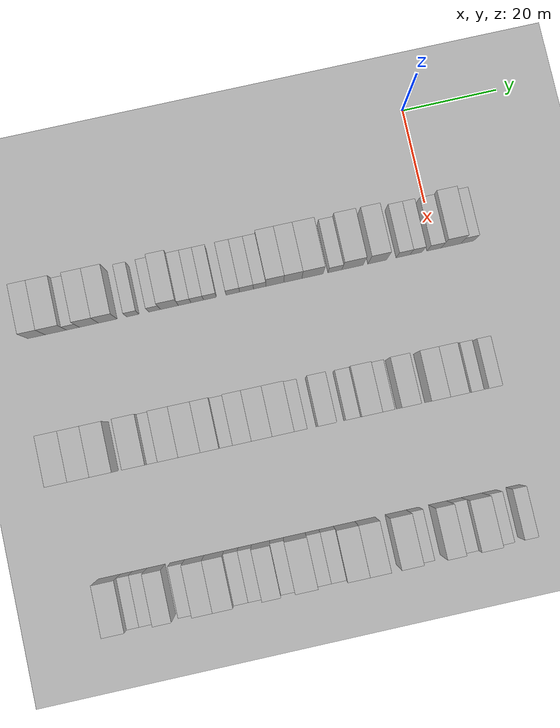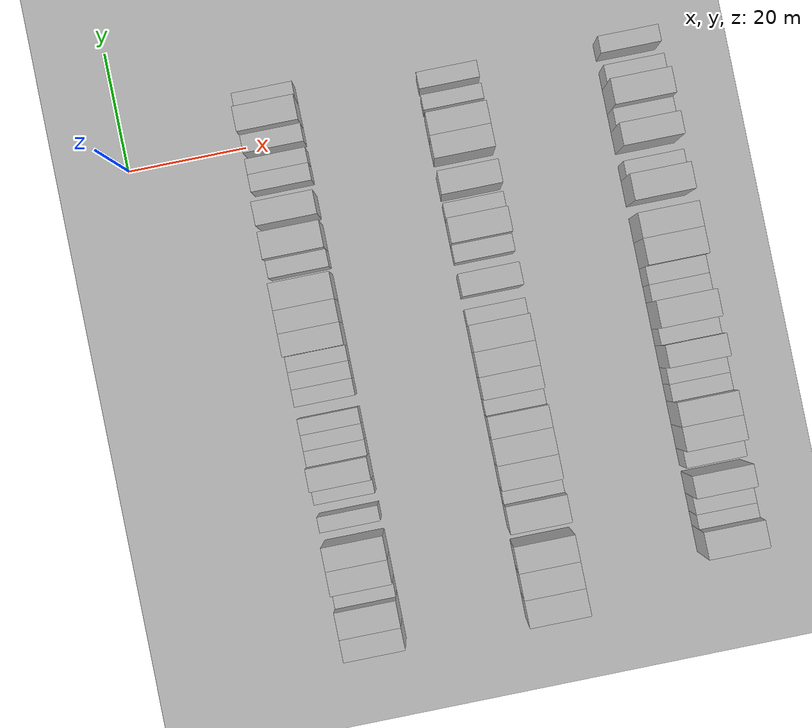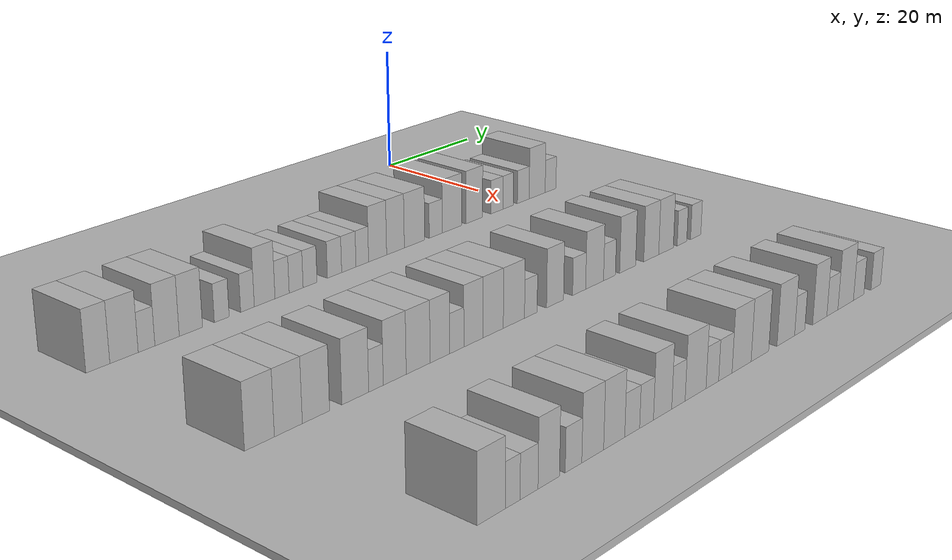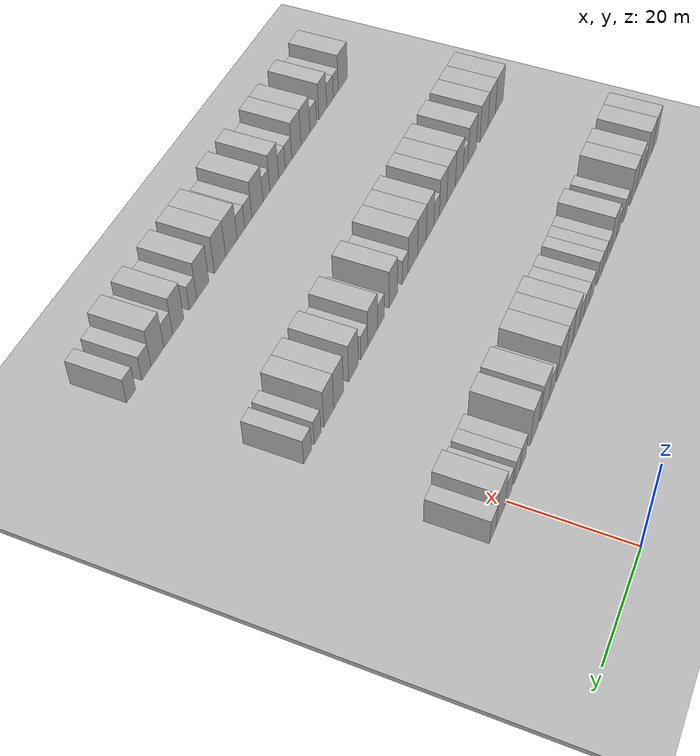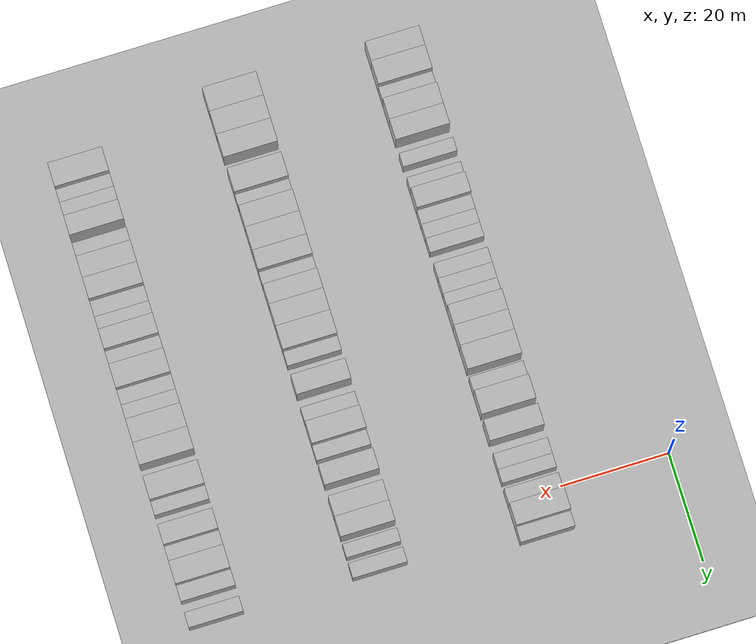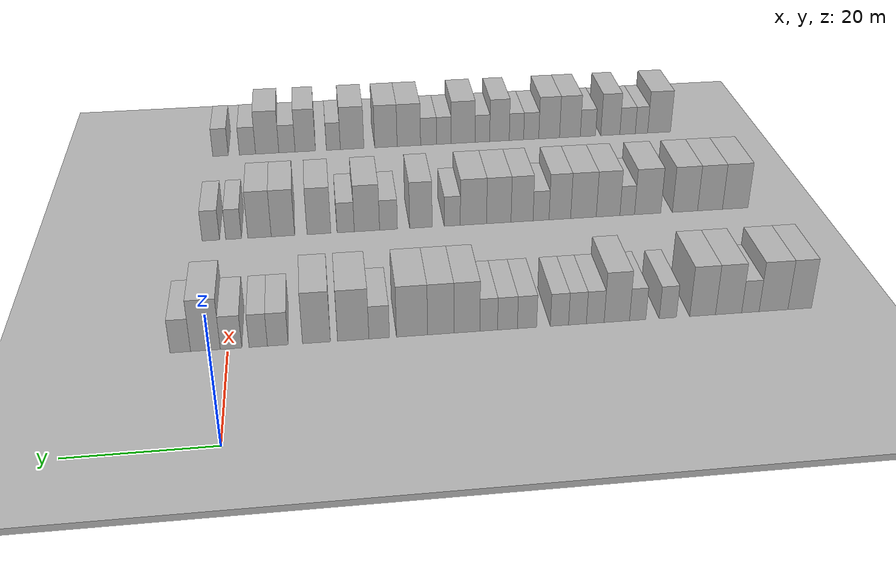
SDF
<sdf version="1.6">
 <world name="default">
  <include><name>ground_plane_1</name><uri>model://HANNAS_ground_plane</uri></include>
  <include>
   <name>ground_plane_2</name>
   <uri>model://HANNAS_ground_plane</uri>
   <pose>100 0 0  0 0 0</pose>
  </include>
  <model name="building_45">
   <static>1</static>
   <pose>25.0000 -83.1467 0 0.000000 0.000000 0.000000</pose>
   <link name="link">
    <pose>0 0 4.50 0 0 0</pose>
    <collision name="collision"><geometry><box><size>10.0000 3.6132 9.0000</size></box></geometry></collision>
    <visual name="visual">
     <cast_shadows>0</cast_shadows>
     <geometry><box><size>10.0000 3.6132 9.0000</size></box></geometry>
     <material>
      <script>
       <uri>model://HANNAS_wall/materials/scripts</uri>
       <uri>model://HANNAS_wall/materials/textures</uri>
       <name>vrc/HANNAS_wall</name>
      </script>
     </material>
    </visual>
   </link>
  </model>
  <model name="building_46">
   <static>1</static>
   <pose>25.0000 -79.1482 0 0.000000 0.000000 0.000000</pose>
   <link name="link">
    <pose>0 0 4.50 0 0 0</pose>
    <collision name="collision"><geometry><box><size>10.0000 4.3839 9.0000</size></box></geometry></collision>
    <visual name="visual">
     <cast_shadows>0</cast_shadows>
     <geometry><box><size>10.0000 4.3839 9.0000</size></box></geometry>
     <material>
      <script>
       <uri>model://HANNAS_wall/materials/scripts</uri>
       <uri>model://HANNAS_wall/materials/textures</uri>
       <name>vrc/HANNAS_wall</name>
      </script>
     </material>
    </visual>
   </link>
  </model>
  <model name="building_47">
   <static>1</static>
   <pose>25.0000 -75.6346 0 0.000000 0.000000 0.000000</pose>
   <link name="link">
    <pose>0 0 3.00 0 0 0</pose>
    <collision name="collision"><geometry><box><size>10.0000 2.6431 6.0000</size></box></geometry></collision>
    <visual name="visual">
     <cast_shadows>0</cast_shadows>
     <geometry><box><size>10.0000 2.6431 6.0000</size></box></geometry>
     <material>
      <script>
       <uri>model://HANNAS_wall/materials/scripts</uri>
       <uri>model://HANNAS_wall/materials/textures</uri>
       <name>vrc/HANNAS_wall</name>
      </script>
     </material>
    </visual>
   </link>
  </model>
  <model name="building_48">
   <static>1</static>
   <pose>25.0000 -72.3406 0 0.000000 0.000000 0.000000</pose>
   <link name="link">
    <pose>0 0 4.50 0 0 0</pose>
    <collision name="collision"><geometry><box><size>10.0000 3.9449 9.0000</size></box></geometry></collision>
    <visual name="visual">
     <cast_shadows>0</cast_shadows>
     <geometry><box><size>10.0000 3.9449 9.0000</size></box></geometry>
     <material>
      <script>
       <uri>model://HANNAS_wall/materials/scripts</uri>
       <uri>model://HANNAS_wall/materials/textures</uri>
       <name>vrc/HANNAS_wall</name>
      </script>
     </material>
    </visual>
   </link>
  </model>
  <model name="building_49">
   <static>1</static>
   <pose>25.0000 -68.4326 0 0.000000 0.000000 0.000000</pose>
   <link name="link">
    <pose>0 0 4.50 0 0 0</pose>
    <collision name="collision"><geometry><box><size>10.0000 3.8712 9.0000</size></box></geometry></collision>
    <visual name="visual">
     <cast_shadows>0</cast_shadows>
     <geometry><box><size>10.0000 3.8712 9.0000</size></box></geometry>
     <material>
      <script>
       <uri>model://HANNAS_wall/materials/scripts</uri>
       <uri>model://HANNAS_wall/materials/textures</uri>
       <name>vrc/HANNAS_wall</name>
      </script>
     </material>
    </visual>
   </link>
  </model>
  <model name="building_50">
   <static>1</static>
   <pose>25.0000 -63.2188 0 0.000000 0.000000 0.000000</pose>
   <link name="link">
    <pose>0 0 3.00 0 0 0</pose>
    <collision name="collision"><geometry><box><size>10.0000 2.5565 6.0000</size></box></geometry></collision>
    <visual name="visual">
     <cast_shadows>0</cast_shadows>
     <geometry><box><size>10.0000 2.5565 6.0000</size></box></geometry>
     <material>
      <script>
       <uri>model://HANNAS_wall/materials/scripts</uri>
       <uri>model://HANNAS_wall/materials/textures</uri>
       <name>vrc/HANNAS_wall</name>
      </script>
     </material>
    </visual>
   </link>
  </model>
  <model name="building_51">
   <static>1</static>
   <pose>25.0000 -58.7260 0 0.000000 0.000000 0.000000</pose>
   <link name="link">
    <pose>0 0 3.00 0 0 0</pose>
    <collision name="collision"><geometry><box><size>10.0000 2.4291 6.0000</size></box></geometry></collision>
    <visual name="visual">
     <cast_shadows>0</cast_shadows>
     <geometry><box><size>10.0000 2.4291 6.0000</size></box></geometry>
     <material>
      <script>
       <uri>model://HANNAS_wall/materials/scripts</uri>
       <uri>model://HANNAS_wall/materials/textures</uri>
       <name>vrc/HANNAS_wall</name>
      </script>
     </material>
    </visual>
   </link>
  </model>
  <model name="building_52">
   <static>1</static>
   <pose>25.0000 -55.6364 0 0.000000 0.000000 0.000000</pose>
   <link name="link">
    <pose>0 0 4.50 0 0 0</pose>
    <collision name="collision"><geometry><box><size>10.0000 3.7501 9.0000</size></box></geometry></collision>
    <visual name="visual">
     <cast_shadows>0</cast_shadows>
     <geometry><box><size>10.0000 3.7501 9.0000</size></box></geometry>
     <material>
      <script>
       <uri>model://HANNAS_wall/materials/scripts</uri>
       <uri>model://HANNAS_wall/materials/textures</uri>
       <name>vrc/HANNAS_wall</name>
      </script>
     </material>
    </visual>
   </link>
  </model>
  <model name="building_53">
   <static>1</static>
   <pose>25.0000 -52.4524 0 0.000000 0.000000 0.000000</pose>
   <link name="link">
    <pose>0 0 3.00 0 0 0</pose>
    <collision name="collision"><geometry><box><size>10.0000 2.6179 6.0000</size></box></geometry></collision>
    <visual name="visual">
     <cast_shadows>0</cast_shadows>
     <geometry><box><size>10.0000 2.6179 6.0000</size></box></geometry>
     <material>
      <script>
       <uri>model://HANNAS_wall/materials/scripts</uri>
       <uri>model://HANNAS_wall/materials/textures</uri>
       <name>vrc/HANNAS_wall</name>
      </script>
     </material>
    </visual>
   </link>
  </model>
  <model name="building_54">
   <static>1</static>
   <pose>25.0000 -49.8335 0 0.000000 0.000000 0.000000</pose>
   <link name="link">
    <pose>0 0 3.00 0 0 0</pose>
    <collision name="collision"><geometry><box><size>10.0000 2.6200 6.0000</size></box></geometry></collision>
    <visual name="visual">
     <cast_shadows>0</cast_shadows>
     <geometry><box><size>10.0000 2.6200 6.0000</size></box></geometry>
     <material>
      <script>
       <uri>model://HANNAS_wall/materials/scripts</uri>
       <uri>model://HANNAS_wall/materials/textures</uri>
       <name>vrc/HANNAS_wall</name>
      </script>
     </material>
    </visual>
   </link>
  </model>
  <model name="building_55">
   <static>1</static>
   <pose>25.0000 -47.1910 0 0.000000 0.000000 0.000000</pose>
   <link name="link">
    <pose>0 0 3.00 0 0 0</pose>
    <collision name="collision"><geometry><box><size>10.0000 2.6651 6.0000</size></box></geometry></collision>
    <visual name="visual">
     <cast_shadows>0</cast_shadows>
     <geometry><box><size>10.0000 2.6651 6.0000</size></box></geometry>
     <material>
      <script>
       <uri>model://HANNAS_wall/materials/scripts</uri>
       <uri>model://HANNAS_wall/materials/textures</uri>
       <name>vrc/HANNAS_wall</name>
      </script>
     </material>
    </visual>
   </link>
  </model>
  <model name="building_56">
   <static>1</static>
   <pose>25.0000 -42.4546 0 0.000000 0.000000 0.000000</pose>
   <link name="link">
    <pose>0 0 3.00 0 0 0</pose>
    <collision name="collision"><geometry><box><size>10.0000 2.8075 6.0000</size></box></geometry></collision>
    <visual name="visual">
     <cast_shadows>0</cast_shadows>
     <geometry><box><size>10.0000 2.8075 6.0000</size></box></geometry>
     <material>
      <script>
       <uri>model://HANNAS_wall/materials/scripts</uri>
       <uri>model://HANNAS_wall/materials/textures</uri>
       <name>vrc/HANNAS_wall</name>
      </script>
     </material>
    </visual>
   </link>
  </model>
  <model name="building_57">
   <static>1</static>
   <pose>25.0000 -39.6126 0 0.000000 0.000000 0.000000</pose>
   <link name="link">
    <pose>0 0 3.00 0 0 0</pose>
    <collision name="collision"><geometry><box><size>10.0000 2.8767 6.0000</size></box></geometry></collision>
    <visual name="visual">
     <cast_shadows>0</cast_shadows>
     <geometry><box><size>10.0000 2.8767 6.0000</size></box></geometry>
     <material>
      <script>
       <uri>model://HANNAS_wall/materials/scripts</uri>
       <uri>model://HANNAS_wall/materials/textures</uri>
       <name>vrc/HANNAS_wall</name>
      </script>
     </material>
    </visual>
   </link>
  </model>
  <model name="building_58">
   <static>1</static>
   <pose>25.0000 -36.8945 0 0.000000 0.000000 0.000000</pose>
   <link name="link">
    <pose>0 0 3.00 0 0 0</pose>
    <collision name="collision"><geometry><box><size>10.0000 2.5595 6.0000</size></box></geometry></collision>
    <visual name="visual">
     <cast_shadows>0</cast_shadows>
     <geometry><box><size>10.0000 2.5595 6.0000</size></box></geometry>
     <material>
      <script>
       <uri>model://HANNAS_wall/materials/scripts</uri>
       <uri>model://HANNAS_wall/materials/textures</uri>
       <name>vrc/HANNAS_wall</name>
      </script>
     </material>
    </visual>
   </link>
  </model>
  <model name="building_59">
   <static>1</static>
   <pose>25.0000 -33.7421 0 0.000000 0.000000 0.000000</pose>
   <link name="link">
    <pose>0 0 4.50 0 0 0</pose>
    <collision name="collision"><geometry><box><size>10.0000 3.7453 9.0000</size></box></geometry></collision>
    <visual name="visual">
     <cast_shadows>0</cast_shadows>
     <geometry><box><size>10.0000 3.7453 9.0000</size></box></geometry>
     <material>
      <script>
       <uri>model://HANNAS_wall/materials/scripts</uri>
       <uri>model://HANNAS_wall/materials/textures</uri>
       <name>vrc/HANNAS_wall</name>
      </script>
     </material>
    </visual>
   </link>
  </model>
  <model name="building_60">
   <static>1</static>
   <pose>25.0000 -29.9868 0 0.000000 0.000000 0.000000</pose>
   <link name="link">
    <pose>0 0 4.50 0 0 0</pose>
    <collision name="collision"><geometry><box><size>10.0000 3.7653 9.0000</size></box></geometry></collision>
    <visual name="visual">
     <cast_shadows>0</cast_shadows>
     <geometry><box><size>10.0000 3.7653 9.0000</size></box></geometry>
     <material>
      <script>
       <uri>model://HANNAS_wall/materials/scripts</uri>
       <uri>model://HANNAS_wall/materials/textures</uri>
       <name>vrc/HANNAS_wall</name>
      </script>
     </material>
    </visual>
   </link>
  </model>
  <model name="building_61">
   <static>1</static>
   <pose>25.0000 -25.8862 0 0.000000 0.000000 0.000000</pose>
   <link name="link">
    <pose>0 0 4.50 0 0 0</pose>
    <collision name="collision"><geometry><box><size>10.0000 4.4359 9.0000</size></box></geometry></collision>
    <visual name="visual">
     <cast_shadows>0</cast_shadows>
     <geometry><box><size>10.0000 4.4359 9.0000</size></box></geometry>
     <material>
      <script>
       <uri>model://HANNAS_wall/materials/scripts</uri>
       <uri>model://HANNAS_wall/materials/textures</uri>
       <name>vrc/HANNAS_wall</name>
      </script>
     </material>
    </visual>
   </link>
  </model>
  <model name="building_62">
   <static>1</static>
   <pose>25.0000 -21.2122 0 0.000000 0.000000 0.000000</pose>
   <link name="link">
    <pose>0 0 3.00 0 0 0</pose>
    <collision name="collision"><geometry><box><size>10.0000 2.9122 6.0000</size></box></geometry></collision>
    <visual name="visual">
     <cast_shadows>0</cast_shadows>
     <geometry><box><size>10.0000 2.9122 6.0000</size></box></geometry>
     <material>
      <script>
       <uri>model://HANNAS_wall/materials/scripts</uri>
       <uri>model://HANNAS_wall/materials/textures</uri>
       <name>vrc/HANNAS_wall</name>
      </script>
     </material>
    </visual>
   </link>
  </model>
  <model name="building_63">
   <static>1</static>
   <pose>25.0000 -17.5388 0 0.000000 0.000000 0.000000</pose>
   <link name="link">
    <pose>0 0 4.50 0 0 0</pose>
    <collision name="collision"><geometry><box><size>10.0000 4.4345 9.0000</size></box></geometry></collision>
    <visual name="visual">
     <cast_shadows>0</cast_shadows>
     <geometry><box><size>10.0000 4.4345 9.0000</size></box></geometry>
     <material>
      <script>
       <uri>model://HANNAS_wall/materials/scripts</uri>
       <uri>model://HANNAS_wall/materials/textures</uri>
       <name>vrc/HANNAS_wall</name>
      </script>
     </material>
    </visual>
   </link>
  </model>
  <model name="building_64">
   <static>1</static>
   <pose>25.0000 -12.3627 0 0.000000 0.000000 0.000000</pose>
   <link name="link">
    <pose>0 0 4.50 0 0 0</pose>
    <collision name="collision"><geometry><box><size>10.0000 3.9179 9.0000</size></box></geometry></collision>
    <visual name="visual">
     <cast_shadows>0</cast_shadows>
     <geometry><box><size>10.0000 3.9179 9.0000</size></box></geometry>
     <material>
      <script>
       <uri>model://HANNAS_wall/materials/scripts</uri>
       <uri>model://HANNAS_wall/materials/textures</uri>
       <name>vrc/HANNAS_wall</name>
      </script>
     </material>
    </visual>
   </link>
  </model>
  <model name="building_65">
   <static>1</static>
   <pose>25.0000 -6.9539 0 0.000000 0.000000 0.000000</pose>
   <link name="link">
    <pose>0 0 3.00 0 0 0</pose>
    <collision name="collision"><geometry><box><size>10.0000 2.8996 6.0000</size></box></geometry></collision>
    <visual name="visual">
     <cast_shadows>0</cast_shadows>
     <geometry><box><size>10.0000 2.8996 6.0000</size></box></geometry>
     <material>
      <script>
       <uri>model://HANNAS_wall/materials/scripts</uri>
       <uri>model://HANNAS_wall/materials/textures</uri>
       <name>vrc/HANNAS_wall</name>
      </script>
     </material>
    </visual>
   </link>
  </model>
  <model name="building_66">
   <static>1</static>
   <pose>25.0000 -4.2256 0 0.000000 0.000000 0.000000</pose>
   <link name="link">
    <pose>0 0 3.00 0 0 0</pose>
    <collision name="collision"><geometry><box><size>10.0000 2.5570 6.0000</size></box></geometry></collision>
    <visual name="visual">
     <cast_shadows>0</cast_shadows>
     <geometry><box><size>10.0000 2.5570 6.0000</size></box></geometry>
     <material>
      <script>
       <uri>model://HANNAS_wall/materials/scripts</uri>
       <uri>model://HANNAS_wall/materials/textures</uri>
       <name>vrc/HANNAS_wall</name>
      </script>
     </material>
    </visual>
   </link>
  </model>
  <model name="building_67">
   <static>1</static>
   <pose>25.0000 -0.4562 0 0.000000 0.000000 0.000000</pose>
   <link name="link">
    <pose>0 0 3.00 0 0 0</pose>
    <collision name="collision"><geometry><box><size>10.0000 2.9819 6.0000</size></box></geometry></collision>
    <visual name="visual">
     <cast_shadows>0</cast_shadows>
     <geometry><box><size>10.0000 2.9819 6.0000</size></box></geometry>
     <material>
      <script>
       <uri>model://HANNAS_wall/materials/scripts</uri>
       <uri>model://HANNAS_wall/materials/textures</uri>
       <name>vrc/HANNAS_wall</name>
      </script>
     </material>
    </visual>
   </link>
  </model>
  <model name="building_68">
   <static>1</static>
   <pose>25.0000 3.0815 0 0.000000 0.000000 0.000000</pose>
   <link name="link">
    <pose>0 0 4.50 0 0 0</pose>
    <collision name="collision"><geometry><box><size>10.0000 4.0934 9.0000</size></box></geometry></collision>
    <visual name="visual">
     <cast_shadows>0</cast_shadows>
     <geometry><box><size>10.0000 4.0934 9.0000</size></box></geometry>
     <material>
      <script>
       <uri>model://HANNAS_wall/materials/scripts</uri>
       <uri>model://HANNAS_wall/materials/textures</uri>
       <name>vrc/HANNAS_wall</name>
      </script>
     </material>
    </visual>
   </link>
  </model>
  <model name="building_69">
   <static>1</static>
   <pose>25.0000 6.5411 0 0.000000 0.000000 0.000000</pose>
   <link name="link">
    <pose>0 0 3.00 0 0 0</pose>
    <collision name="collision"><geometry><box><size>10.0000 2.8258 6.0000</size></box></geometry></collision>
    <visual name="visual">
     <cast_shadows>0</cast_shadows>
     <geometry><box><size>10.0000 2.8258 6.0000</size></box></geometry>
     <material>
      <script>
       <uri>model://HANNAS_wall/materials/scripts</uri>
       <uri>model://HANNAS_wall/materials/textures</uri>
       <name>vrc/HANNAS_wall</name>
      </script>
     </material>
    </visual>
   </link>
  </model>
  <model name="building_189">
   <static>1</static>
   <pose>55.0000 -83.3274 0 0.000000 0.000000 0.000000</pose>
   <link name="link">
    <pose>0 0 4.50 0 0 0</pose>
    <collision name="collision"><geometry><box><size>10.0000 4.4622 9.0000</size></box></geometry></collision>
    <visual name="visual">
     <cast_shadows>0</cast_shadows>
     <geometry><box><size>10.0000 4.4622 9.0000</size></box></geometry>
     <material>
      <script>
       <uri>model://HANNAS_wall/materials/scripts</uri>
       <uri>model://HANNAS_wall/materials/textures</uri>
       <name>vrc/HANNAS_wall</name>
      </script>
     </material>
    </visual>
   </link>
  </model>
  <model name="building_190">
   <static>1</static>
   <pose>55.0000 -78.9363 0 0.000000 0.000000 0.000000</pose>
   <link name="link">
    <pose>0 0 4.50 0 0 0</pose>
    <collision name="collision"><geometry><box><size>10.0000 4.3200 9.0000</size></box></geometry></collision>
    <visual name="visual">
     <cast_shadows>0</cast_shadows>
     <geometry><box><size>10.0000 4.3200 9.0000</size></box></geometry>
     <material>
      <script>
       <uri>model://HANNAS_wall/materials/scripts</uri>
       <uri>model://HANNAS_wall/materials/textures</uri>
       <name>vrc/HANNAS_wall</name>
      </script>
     </material>
    </visual>
   </link>
  </model>
  <model name="building_191">
   <static>1</static>
   <pose>55.0000 -74.6039 0 0.000000 0.000000 0.000000</pose>
   <link name="link">
    <pose>0 0 4.50 0 0 0</pose>
    <collision name="collision"><geometry><box><size>10.0000 4.3448 9.0000</size></box></geometry></collision>
    <visual name="visual">
     <cast_shadows>0</cast_shadows>
     <geometry><box><size>10.0000 4.3448 9.0000</size></box></geometry>
     <material>
      <script>
       <uri>model://HANNAS_wall/materials/scripts</uri>
       <uri>model://HANNAS_wall/materials/textures</uri>
       <name>vrc/HANNAS_wall</name>
      </script>
     </material>
    </visual>
   </link>
  </model>
  <model name="building_192">
   <static>1</static>
   <pose>55.0000 -68.1826 0 0.000000 0.000000 0.000000</pose>
   <link name="link">
    <pose>0 0 4.50 0 0 0</pose>
    <collision name="collision"><geometry><box><size>10.0000 4.4977 9.0000</size></box></geometry></collision>
    <visual name="visual">
     <cast_shadows>0</cast_shadows>
     <geometry><box><size>10.0000 4.4977 9.0000</size></box></geometry>
     <material>
      <script>
       <uri>model://HANNAS_wall/materials/scripts</uri>
       <uri>model://HANNAS_wall/materials/textures</uri>
       <name>vrc/HANNAS_wall</name>
      </script>
     </material>
    </visual>
   </link>
  </model>
  <model name="building_193">
   <static>1</static>
   <pose>55.0000 -64.6857 0 0.000000 0.000000 0.000000</pose>
   <link name="link">
    <pose>0 0 3.00 0 0 0</pose>
    <collision name="collision"><geometry><box><size>10.0000 2.4961 6.0000</size></box></geometry></collision>
    <visual name="visual">
     <cast_shadows>0</cast_shadows>
     <geometry><box><size>10.0000 2.4961 6.0000</size></box></geometry>
     <material>
      <script>
       <uri>model://HANNAS_wall/materials/scripts</uri>
       <uri>model://HANNAS_wall/materials/textures</uri>
       <name>vrc/HANNAS_wall</name>
      </script>
     </material>
    </visual>
   </link>
  </model>
  <model name="building_194">
   <static>1</static>
   <pose>55.0000 -61.4214 0 0.000000 0.000000 0.000000</pose>
   <link name="link">
    <pose>0 0 4.50 0 0 0</pose>
    <collision name="collision"><geometry><box><size>10.0000 4.0326 9.0000</size></box></geometry></collision>
    <visual name="visual">
     <cast_shadows>0</cast_shadows>
     <geometry><box><size>10.0000 4.0326 9.0000</size></box></geometry>
     <material>
      <script>
       <uri>model://HANNAS_wall/materials/scripts</uri>
       <uri>model://HANNAS_wall/materials/textures</uri>
       <name>vrc/HANNAS_wall</name>
      </script>
     </material>
    </visual>
   </link>
  </model>
  <model name="building_195">
   <static>1</static>
   <pose>55.0000 -57.2342 0 0.000000 0.000000 0.000000</pose>
   <link name="link">
    <pose>0 0 4.50 0 0 0</pose>
    <collision name="collision"><geometry><box><size>10.0000 4.3418 9.0000</size></box></geometry></collision>
    <visual name="visual">
     <cast_shadows>0</cast_shadows>
     <geometry><box><size>10.0000 4.3418 9.0000</size></box></geometry>
     <material>
      <script>
       <uri>model://HANNAS_wall/materials/scripts</uri>
       <uri>model://HANNAS_wall/materials/textures</uri>
       <name>vrc/HANNAS_wall</name>
      </script>
     </material>
    </visual>
   </link>
  </model>
  <model name="building_196">
   <static>1</static>
   <pose>55.0000 -53.2390 0 0.000000 0.000000 0.000000</pose>
   <link name="link">
    <pose>0 0 4.50 0 0 0</pose>
    <collision name="collision"><geometry><box><size>10.0000 3.6485 9.0000</size></box></geometry></collision>
    <visual name="visual">
     <cast_shadows>0</cast_shadows>
     <geometry><box><size>10.0000 3.6485 9.0000</size></box></geometry>
     <material>
      <script>
       <uri>model://HANNAS_wall/materials/scripts</uri>
       <uri>model://HANNAS_wall/materials/textures</uri>
       <name>vrc/HANNAS_wall</name>
      </script>
     </material>
    </visual>
   </link>
  </model>
  <model name="building_197">
   <static>1</static>
   <pose>55.0000 -50.0666 0 0.000000 0.000000 0.000000</pose>
   <link name="link">
    <pose>0 0 3.00 0 0 0</pose>
    <collision name="collision"><geometry><box><size>10.0000 2.6963 6.0000</size></box></geometry></collision>
    <visual name="visual">
     <cast_shadows>0</cast_shadows>
     <geometry><box><size>10.0000 2.6963 6.0000</size></box></geometry>
     <material>
      <script>
       <uri>model://HANNAS_wall/materials/scripts</uri>
       <uri>model://HANNAS_wall/materials/textures</uri>
       <name>vrc/HANNAS_wall</name>
      </script>
     </material>
    </visual>
   </link>
  </model>
  <model name="building_198">
   <static>1</static>
   <pose>55.0000 -46.8722 0 0.000000 0.000000 0.000000</pose>
   <link name="link">
    <pose>0 0 4.50 0 0 0</pose>
    <collision name="collision"><geometry><box><size>10.0000 3.6926 9.0000</size></box></geometry></collision>
    <visual name="visual">
     <cast_shadows>0</cast_shadows>
     <geometry><box><size>10.0000 3.6926 9.0000</size></box></geometry>
     <material>
      <script>
       <uri>model://HANNAS_wall/materials/scripts</uri>
       <uri>model://HANNAS_wall/materials/textures</uri>
       <name>vrc/HANNAS_wall</name>
      </script>
     </material>
    </visual>
   </link>
  </model>
  <model name="building_199">
   <static>1</static>
   <pose>55.0000 -42.9858 0 0.000000 0.000000 0.000000</pose>
   <link name="link">
    <pose>0 0 4.50 0 0 0</pose>
    <collision name="collision"><geometry><box><size>10.0000 4.0801 9.0000</size></box></geometry></collision>
    <visual name="visual">
     <cast_shadows>0</cast_shadows>
     <geometry><box><size>10.0000 4.0801 9.0000</size></box></geometry>
     <material>
      <script>
       <uri>model://HANNAS_wall/materials/scripts</uri>
       <uri>model://HANNAS_wall/materials/textures</uri>
       <name>vrc/HANNAS_wall</name>
      </script>
     </material>
    </visual>
   </link>
  </model>
  <model name="building_200">
   <static>1</static>
   <pose>55.0000 -38.7621 0 0.000000 0.000000 0.000000</pose>
   <link name="link">
    <pose>0 0 4.50 0 0 0</pose>
    <collision name="collision"><geometry><box><size>10.0000 4.3673 9.0000</size></box></geometry></collision>
    <visual name="visual">
     <cast_shadows>0</cast_shadows>
     <geometry><box><size>10.0000 4.3673 9.0000</size></box></geometry>
     <material>
      <script>
       <uri>model://HANNAS_wall/materials/scripts</uri>
       <uri>model://HANNAS_wall/materials/textures</uri>
       <name>vrc/HANNAS_wall</name>
      </script>
     </material>
    </visual>
   </link>
  </model>
  <model name="building_201">
   <static>1</static>
   <pose>55.0000 -35.2476 0 0.000000 0.000000 0.000000</pose>
   <link name="link">
    <pose>0 0 3.00 0 0 0</pose>
    <collision name="collision"><geometry><box><size>10.0000 2.6618 6.0000</size></box></geometry></collision>
    <visual name="visual">
     <cast_shadows>0</cast_shadows>
     <geometry><box><size>10.0000 2.6618 6.0000</size></box></geometry>
     <material>
      <script>
       <uri>model://HANNAS_wall/materials/scripts</uri>
       <uri>model://HANNAS_wall/materials/textures</uri>
       <name>vrc/HANNAS_wall</name>
      </script>
     </material>
    </visual>
   </link>
  </model>
  <model name="building_202">
   <static>1</static>
   <pose>55.0000 -30.0617 0 0.000000 0.000000 0.000000</pose>
   <link name="link">
    <pose>0 0 4.50 0 0 0</pose>
    <collision name="collision"><geometry><box><size>10.0000 3.7100 9.0000</size></box></geometry></collision>
    <visual name="visual">
     <cast_shadows>0</cast_shadows>
     <geometry><box><size>10.0000 3.7100 9.0000</size></box></geometry>
     <material>
      <script>
       <uri>model://HANNAS_wall/materials/scripts</uri>
       <uri>model://HANNAS_wall/materials/textures</uri>
       <name>vrc/HANNAS_wall</name>
      </script>
     </material>
    </visual>
   </link>
  </model>
  <model name="building_203">
   <static>1</static>
   <pose>55.0000 -24.7394 0 0.000000 0.000000 0.000000</pose>
   <link name="link">
    <pose>0 0 3.00 0 0 0</pose>
    <collision name="collision"><geometry><box><size>10.0000 2.9346 6.0000</size></box></geometry></collision>
    <visual name="visual">
     <cast_shadows>0</cast_shadows>
     <geometry><box><size>10.0000 2.9346 6.0000</size></box></geometry>
     <material>
      <script>
       <uri>model://HANNAS_wall/materials/scripts</uri>
       <uri>model://HANNAS_wall/materials/textures</uri>
       <name>vrc/HANNAS_wall</name>
      </script>
     </material>
    </visual>
   </link>
  </model>
  <model name="building_204">
   <static>1</static>
   <pose>55.0000 -21.2064 0 0.000000 0.000000 0.000000</pose>
   <link name="link">
    <pose>0 0 4.50 0 0 0</pose>
    <collision name="collision"><geometry><box><size>10.0000 4.1315 9.0000</size></box></geometry></collision>
    <visual name="visual">
     <cast_shadows>0</cast_shadows>
     <geometry><box><size>10.0000 4.1315 9.0000</size></box></geometry>
     <material>
      <script>
       <uri>model://HANNAS_wall/materials/scripts</uri>
       <uri>model://HANNAS_wall/materials/textures</uri>
       <name>vrc/HANNAS_wall</name>
      </script>
     </material>
    </visual>
   </link>
  </model>
  <model name="building_205">
   <static>1</static>
   <pose>55.0000 -17.7407 0 0.000000 0.000000 0.000000</pose>
   <link name="link">
    <pose>0 0 3.00 0 0 0</pose>
    <collision name="collision"><geometry><box><size>10.0000 2.7999 6.0000</size></box></geometry></collision>
    <visual name="visual">
     <cast_shadows>0</cast_shadows>
     <geometry><box><size>10.0000 2.7999 6.0000</size></box></geometry>
     <material>
      <script>
       <uri>model://HANNAS_wall/materials/scripts</uri>
       <uri>model://HANNAS_wall/materials/textures</uri>
       <name>vrc/HANNAS_wall</name>
      </script>
     </material>
    </visual>
   </link>
  </model>
  <model name="building_206">
   <static>1</static>
   <pose>55.0000 -13.4084 0 0.000000 0.000000 0.000000</pose>
   <link name="link">
    <pose>0 0 4.50 0 0 0</pose>
    <collision name="collision"><geometry><box><size>10.0000 3.8647 9.0000</size></box></geometry></collision>
    <visual name="visual">
     <cast_shadows>0</cast_shadows>
     <geometry><box><size>10.0000 3.8647 9.0000</size></box></geometry>
     <material>
      <script>
       <uri>model://HANNAS_wall/materials/scripts</uri>
       <uri>model://HANNAS_wall/materials/textures</uri>
       <name>vrc/HANNAS_wall</name>
      </script>
     </material>
    </visual>
   </link>
  </model>
  <model name="building_207">
   <static>1</static>
   <pose>55.0000 -7.5936 0 0.000000 0.000000 0.000000</pose>
   <link name="link">
    <pose>0 0 4.50 0 0 0</pose>
    <collision name="collision"><geometry><box><size>10.0000 3.7651 9.0000</size></box></geometry></collision>
    <visual name="visual">
     <cast_shadows>0</cast_shadows>
     <geometry><box><size>10.0000 3.7651 9.0000</size></box></geometry>
     <material>
      <script>
       <uri>model://HANNAS_wall/materials/scripts</uri>
       <uri>model://HANNAS_wall/materials/textures</uri>
       <name>vrc/HANNAS_wall</name>
      </script>
     </material>
    </visual>
   </link>
  </model>
  <model name="building_208">
   <static>1</static>
   <pose>55.0000 -3.8307 0 0.000000 0.000000 0.000000</pose>
   <link name="link">
    <pose>0 0 4.50 0 0 0</pose>
    <collision name="collision"><geometry><box><size>10.0000 3.7606 9.0000</size></box></geometry></collision>
    <visual name="visual">
     <cast_shadows>0</cast_shadows>
     <geometry><box><size>10.0000 3.7606 9.0000</size></box></geometry>
     <material>
      <script>
       <uri>model://HANNAS_wall/materials/scripts</uri>
       <uri>model://HANNAS_wall/materials/textures</uri>
       <name>vrc/HANNAS_wall</name>
      </script>
     </material>
    </visual>
   </link>
  </model>
  <model name="building_209">
   <static>1</static>
   <pose>55.0000 0.3099 0 0.000000 0.000000 0.000000</pose>
   <link name="link">
    <pose>0 0 3.00 0 0 0</pose>
    <collision name="collision"><geometry><box><size>10.0000 2.5206 6.0000</size></box></geometry></collision>
    <visual name="visual">
     <cast_shadows>0</cast_shadows>
     <geometry><box><size>10.0000 2.5206 6.0000</size></box></geometry>
     <material>
      <script>
       <uri>model://HANNAS_wall/materials/scripts</uri>
       <uri>model://HANNAS_wall/materials/textures</uri>
       <name>vrc/HANNAS_wall</name>
      </script>
     </material>
    </visual>
   </link>
  </model>
  <model name="building_210">
   <static>1</static>
   <pose>55.0000 3.9550 0 0.000000 0.000000 0.000000</pose>
   <link name="link">
    <pose>0 0 3.00 0 0 0</pose>
    <collision name="collision"><geometry><box><size>10.0000 2.7695 6.0000</size></box></geometry></collision>
    <visual name="visual">
     <cast_shadows>0</cast_shadows>
     <geometry><box><size>10.0000 2.7695 6.0000</size></box></geometry>
     <material>
      <script>
       <uri>model://HANNAS_wall/materials/scripts</uri>
       <uri>model://HANNAS_wall/materials/textures</uri>
       <name>vrc/HANNAS_wall</name>
      </script>
     </material>
    </visual>
   </link>
  </model>
  <model name="building_328">
   <static>1</static>
   <pose>85.0000 -78.3776 0 0.000000 0.000000 0.000000</pose>
   <link name="link">
    <pose>0 0 4.50 0 0 0</pose>
    <collision name="collision"><geometry><box><size>10.0000 4.4589 9.0000</size></box></geometry></collision>
    <visual name="visual">
     <cast_shadows>0</cast_shadows>
     <geometry><box><size>10.0000 4.4589 9.0000</size></box></geometry>
     <material>
      <script>
       <uri>model://HANNAS_wall/materials/scripts</uri>
       <uri>model://HANNAS_wall/materials/textures</uri>
       <name>vrc/HANNAS_wall</name>
      </script>
     </material>
    </visual>
   </link>
  </model>
  <model name="building_329">
   <static>1</static>
   <pose>85.0000 -74.9478 0 0.000000 0.000000 0.000000</pose>
   <link name="link">
    <pose>0 0 3.00 0 0 0</pose>
    <collision name="collision"><geometry><box><size>10.0000 2.4007 6.0000</size></box></geometry></collision>
    <visual name="visual">
     <cast_shadows>0</cast_shadows>
     <geometry><box><size>10.0000 2.4007 6.0000</size></box></geometry>
     <material>
      <script>
       <uri>model://HANNAS_wall/materials/scripts</uri>
       <uri>model://HANNAS_wall/materials/textures</uri>
       <name>vrc/HANNAS_wall</name>
      </script>
     </material>
    </visual>
   </link>
  </model>
  <model name="building_330">
   <static>1</static>
   <pose>85.0000 -72.2536 0 0.000000 0.000000 0.000000</pose>
   <link name="link">
    <pose>0 0 3.00 0 0 0</pose>
    <collision name="collision"><geometry><box><size>10.0000 2.9877 6.0000</size></box></geometry></collision>
    <visual name="visual">
     <cast_shadows>0</cast_shadows>
     <geometry><box><size>10.0000 2.9877 6.0000</size></box></geometry>
     <material>
      <script>
       <uri>model://HANNAS_wall/materials/scripts</uri>
       <uri>model://HANNAS_wall/materials/textures</uri>
       <name>vrc/HANNAS_wall</name>
      </script>
     </material>
    </visual>
   </link>
  </model>
  <model name="building_331">
   <static>1</static>
   <pose>85.0000 -68.9228 0 0.000000 0.000000 0.000000</pose>
   <link name="link">
    <pose>0 0 4.50 0 0 0</pose>
    <collision name="collision"><geometry><box><size>10.0000 3.6739 9.0000</size></box></geometry></collision>
    <visual name="visual">
     <cast_shadows>0</cast_shadows>
     <geometry><box><size>10.0000 3.6739 9.0000</size></box></geometry>
     <material>
      <script>
       <uri>model://HANNAS_wall/materials/scripts</uri>
       <uri>model://HANNAS_wall/materials/textures</uri>
       <name>vrc/HANNAS_wall</name>
      </script>
     </material>
    </visual>
   </link>
  </model>
  <model name="building_332">
   <static>1</static>
   <pose>85.0000 -64.6176 0 0.000000 0.000000 0.000000</pose>
   <link name="link">
    <pose>0 0 3.00 0 0 0</pose>
    <collision name="collision"><geometry><box><size>10.0000 2.9366 6.0000</size></box></geometry></collision>
    <visual name="visual">
     <cast_shadows>0</cast_shadows>
     <geometry><box><size>10.0000 2.9366 6.0000</size></box></geometry>
     <material>
      <script>
       <uri>model://HANNAS_wall/materials/scripts</uri>
       <uri>model://HANNAS_wall/materials/textures</uri>
       <name>vrc/HANNAS_wall</name>
      </script>
     </material>
    </visual>
   </link>
  </model>
  <model name="building_333">
   <static>1</static>
   <pose>85.0000 -61.1569 0 0.000000 0.000000 0.000000</pose>
   <link name="link">
    <pose>0 0 4.50 0 0 0</pose>
    <collision name="collision"><geometry><box><size>10.0000 3.9848 9.0000</size></box></geometry></collision>
    <visual name="visual">
     <cast_shadows>0</cast_shadows>
     <geometry><box><size>10.0000 3.9848 9.0000</size></box></geometry>
     <material>
      <script>
       <uri>model://HANNAS_wall/materials/scripts</uri>
       <uri>model://HANNAS_wall/materials/textures</uri>
       <name>vrc/HANNAS_wall</name>
      </script>
     </material>
    </visual>
   </link>
  </model>
  <model name="building_334">
   <static>1</static>
   <pose>85.0000 -57.1782 0 0.000000 0.000000 0.000000</pose>
   <link name="link">
    <pose>0 0 4.50 0 0 0</pose>
    <collision name="collision"><geometry><box><size>10.0000 3.9726 9.0000</size></box></geometry></collision>
    <visual name="visual">
     <cast_shadows>0</cast_shadows>
     <geometry><box><size>10.0000 3.9726 9.0000</size></box></geometry>
     <material>
      <script>
       <uri>model://HANNAS_wall/materials/scripts</uri>
       <uri>model://HANNAS_wall/materials/textures</uri>
       <name>vrc/HANNAS_wall</name>
      </script>
     </material>
    </visual>
   </link>
  </model>
  <model name="building_335">
   <static>1</static>
   <pose>85.0000 -53.7532 0 0.000000 0.000000 0.000000</pose>
   <link name="link">
    <pose>0 0 3.00 0 0 0</pose>
    <collision name="collision"><geometry><box><size>10.0000 2.8774 6.0000</size></box></geometry></collision>
    <visual name="visual">
     <cast_shadows>0</cast_shadows>
     <geometry><box><size>10.0000 2.8774 6.0000</size></box></geometry>
     <material>
      <script>
       <uri>model://HANNAS_wall/materials/scripts</uri>
       <uri>model://HANNAS_wall/materials/textures</uri>
       <name>vrc/HANNAS_wall</name>
      </script>
     </material>
    </visual>
   </link>
  </model>
  <model name="building_336">
   <static>1</static>
   <pose>85.0000 -50.9480 0 0.000000 0.000000 0.000000</pose>
   <link name="link">
    <pose>0 0 3.00 0 0 0</pose>
    <collision name="collision"><geometry><box><size>10.0000 2.7329 6.0000</size></box></geometry></collision>
    <visual name="visual">
     <cast_shadows>0</cast_shadows>
     <geometry><box><size>10.0000 2.7329 6.0000</size></box></geometry>
     <material>
      <script>
       <uri>model://HANNAS_wall/materials/scripts</uri>
       <uri>model://HANNAS_wall/materials/textures</uri>
       <name>vrc/HANNAS_wall</name>
      </script>
     </material>
    </visual>
   </link>
  </model>
  <model name="building_337">
   <static>1</static>
   <pose>85.0000 -47.7339 0 0.000000 0.000000 0.000000</pose>
   <link name="link">
    <pose>0 0 4.50 0 0 0</pose>
    <collision name="collision"><geometry><box><size>10.0000 3.6955 9.0000</size></box></geometry></collision>
    <visual name="visual">
     <cast_shadows>0</cast_shadows>
     <geometry><box><size>10.0000 3.6955 9.0000</size></box></geometry>
     <material>
      <script>
       <uri>model://HANNAS_wall/materials/scripts</uri>
       <uri>model://HANNAS_wall/materials/textures</uri>
       <name>vrc/HANNAS_wall</name>
      </script>
     </material>
    </visual>
   </link>
  </model>
  <model name="building_338">
   <static>1</static>
   <pose>85.0000 -44.4986 0 0.000000 0.000000 0.000000</pose>
   <link name="link">
    <pose>0 0 3.00 0 0 0</pose>
    <collision name="collision"><geometry><box><size>10.0000 2.7751 6.0000</size></box></geometry></collision>
    <visual name="visual">
     <cast_shadows>0</cast_shadows>
     <geometry><box><size>10.0000 2.7751 6.0000</size></box></geometry>
     <material>
      <script>
       <uri>model://HANNAS_wall/materials/scripts</uri>
       <uri>model://HANNAS_wall/materials/textures</uri>
       <name>vrc/HANNAS_wall</name>
      </script>
     </material>
    </visual>
   </link>
  </model>
  <model name="building_339">
   <static>1</static>
   <pose>85.0000 -40.8824 0 0.000000 0.000000 0.000000</pose>
   <link name="link">
    <pose>0 0 4.50 0 0 0</pose>
    <collision name="collision"><geometry><box><size>10.0000 4.4574 9.0000</size></box></geometry></collision>
    <visual name="visual">
     <cast_shadows>0</cast_shadows>
     <geometry><box><size>10.0000 4.4574 9.0000</size></box></geometry>
     <material>
      <script>
       <uri>model://HANNAS_wall/materials/scripts</uri>
       <uri>model://HANNAS_wall/materials/textures</uri>
       <name>vrc/HANNAS_wall</name>
      </script>
     </material>
    </visual>
   </link>
  </model>
  <model name="building_340">
   <static>1</static>
   <pose>85.0000 -37.2777 0 0.000000 0.000000 0.000000</pose>
   <link name="link">
    <pose>0 0 3.00 0 0 0</pose>
    <collision name="collision"><geometry><box><size>10.0000 2.7519 6.0000</size></box></geometry></collision>
    <visual name="visual">
     <cast_shadows>0</cast_shadows>
     <geometry><box><size>10.0000 2.7519 6.0000</size></box></geometry>
     <material>
      <script>
       <uri>model://HANNAS_wall/materials/scripts</uri>
       <uri>model://HANNAS_wall/materials/textures</uri>
       <name>vrc/HANNAS_wall</name>
      </script>
     </material>
    </visual>
   </link>
  </model>
  <model name="building_341">
   <static>1</static>
   <pose>85.0000 -34.4026 0 0.000000 0.000000 0.000000</pose>
   <link name="link">
    <pose>0 0 3.00 0 0 0</pose>
    <collision name="collision"><geometry><box><size>10.0000 2.9983 6.0000</size></box></geometry></collision>
    <visual name="visual">
     <cast_shadows>0</cast_shadows>
     <geometry><box><size>10.0000 2.9983 6.0000</size></box></geometry>
     <material>
      <script>
       <uri>model://HANNAS_wall/materials/scripts</uri>
       <uri>model://HANNAS_wall/materials/textures</uri>
       <name>vrc/HANNAS_wall</name>
      </script>
     </material>
    </visual>
   </link>
  </model>
  <model name="building_342">
   <static>1</static>
   <pose>85.0000 -30.7217 0 0.000000 0.000000 0.000000</pose>
   <link name="link">
    <pose>0 0 4.50 0 0 0</pose>
    <collision name="collision"><geometry><box><size>10.0000 4.3636 9.0000</size></box></geometry></collision>
    <visual name="visual">
     <cast_shadows>0</cast_shadows>
     <geometry><box><size>10.0000 4.3636 9.0000</size></box></geometry>
     <material>
      <script>
       <uri>model://HANNAS_wall/materials/scripts</uri>
       <uri>model://HANNAS_wall/materials/textures</uri>
       <name>vrc/HANNAS_wall</name>
      </script>
     </material>
    </visual>
   </link>
  </model>
  <model name="building_343">
   <static>1</static>
   <pose>85.0000 -26.4604 0 0.000000 0.000000 0.000000</pose>
   <link name="link">
    <pose>0 0 4.50 0 0 0</pose>
    <collision name="collision"><geometry><box><size>10.0000 4.1589 9.0000</size></box></geometry></collision>
    <visual name="visual">
     <cast_shadows>0</cast_shadows>
     <geometry><box><size>10.0000 4.1589 9.0000</size></box></geometry>
     <material>
      <script>
       <uri>model://HANNAS_wall/materials/scripts</uri>
       <uri>model://HANNAS_wall/materials/textures</uri>
       <name>vrc/HANNAS_wall</name>
      </script>
     </material>
    </visual>
   </link>
  </model>
  <model name="building_344">
   <static>1</static>
   <pose>85.0000 -20.2057 0 0.000000 0.000000 0.000000</pose>
   <link name="link">
    <pose>0 0 4.50 0 0 0</pose>
    <collision name="collision"><geometry><box><size>10.0000 4.3505 9.0000</size></box></geometry></collision>
    <visual name="visual">
     <cast_shadows>0</cast_shadows>
     <geometry><box><size>10.0000 4.3505 9.0000</size></box></geometry>
     <material>
      <script>
       <uri>model://HANNAS_wall/materials/scripts</uri>
       <uri>model://HANNAS_wall/materials/textures</uri>
       <name>vrc/HANNAS_wall</name>
      </script>
     </material>
    </visual>
   </link>
  </model>
  <model name="building_345">
   <static>1</static>
   <pose>85.0000 -16.7457 0 0.000000 0.000000 0.000000</pose>
   <link name="link">
    <pose>0 0 3.00 0 0 0</pose>
    <collision name="collision"><geometry><box><size>10.0000 2.5694 6.0000</size></box></geometry></collision>
    <visual name="visual">
     <cast_shadows>0</cast_shadows>
     <geometry><box><size>10.0000 2.5694 6.0000</size></box></geometry>
     <material>
      <script>
       <uri>model://HANNAS_wall/materials/scripts</uri>
       <uri>model://HANNAS_wall/materials/textures</uri>
       <name>vrc/HANNAS_wall</name>
      </script>
     </material>
    </visual>
   </link>
  </model>
  <model name="building_346">
   <static>1</static>
   <pose>85.0000 -11.5987 0 0.000000 0.000000 0.000000</pose>
   <link name="link">
    <pose>0 0 4.50 0 0 0</pose>
    <collision name="collision"><geometry><box><size>10.0000 3.7246 9.0000</size></box></geometry></collision>
    <visual name="visual">
     <cast_shadows>0</cast_shadows>
     <geometry><box><size>10.0000 3.7246 9.0000</size></box></geometry>
     <material>
      <script>
       <uri>model://HANNAS_wall/materials/scripts</uri>
       <uri>model://HANNAS_wall/materials/textures</uri>
       <name>vrc/HANNAS_wall</name>
      </script>
     </material>
    </visual>
   </link>
  </model>
  <model name="building_347">
   <static>1</static>
   <pose>85.0000 -8.2545 0 0.000000 0.000000 0.000000</pose>
   <link name="link">
    <pose>0 0 3.00 0 0 0</pose>
    <collision name="collision"><geometry><box><size>10.0000 2.9639 6.0000</size></box></geometry></collision>
    <visual name="visual">
     <cast_shadows>0</cast_shadows>
     <geometry><box><size>10.0000 2.9639 6.0000</size></box></geometry>
     <material>
      <script>
       <uri>model://HANNAS_wall/materials/scripts</uri>
       <uri>model://HANNAS_wall/materials/textures</uri>
       <name>vrc/HANNAS_wall</name>
      </script>
     </material>
    </visual>
   </link>
  </model>
  <model name="building_348">
   <static>1</static>
   <pose>85.0000 -4.6537 0 0.000000 0.000000 0.000000</pose>
   <link name="link">
    <pose>0 0 4.50 0 0 0</pose>
    <collision name="collision"><geometry><box><size>10.0000 4.2376 9.0000</size></box></geometry></collision>
    <visual name="visual">
     <cast_shadows>0</cast_shadows>
     <geometry><box><size>10.0000 4.2376 9.0000</size></box></geometry>
     <material>
      <script>
       <uri>model://HANNAS_wall/materials/scripts</uri>
       <uri>model://HANNAS_wall/materials/textures</uri>
       <name>vrc/HANNAS_wall</name>
      </script>
     </material>
    </visual>
   </link>
  </model>
  <model name="building_349">
   <static>1</static>
   <pose>85.0000 -1.0642 0 0.000000 0.000000 0.000000</pose>
   <link name="link">
    <pose>0 0 3.00 0 0 0</pose>
    <collision name="collision"><geometry><box><size>10.0000 2.9413 6.0000</size></box></geometry></collision>
    <visual name="visual">
     <cast_shadows>0</cast_shadows>
     <geometry><box><size>10.0000 2.9413 6.0000</size></box></geometry>
     <material>
      <script>
       <uri>model://HANNAS_wall/materials/scripts</uri>
       <uri>model://HANNAS_wall/materials/textures</uri>
       <name>vrc/HANNAS_wall</name>
      </script>
     </material>
    </visual>
   </link>
  </model>
  <model name="building_350">
   <static>1</static>
   <pose>85.0000 3.8056 0 0.000000 0.000000 0.000000</pose>
   <link name="link">
    <pose>0 0 3.00 0 0 0</pose>
    <collision name="collision"><geometry><box><size>10.0000 2.7982 6.0000</size></box></geometry></collision>
    <visual name="visual">
     <cast_shadows>0</cast_shadows>
     <geometry><box><size>10.0000 2.7982 6.0000</size></box></geometry>
     <material>
      <script>
       <uri>model://HANNAS_wall/materials/scripts</uri>
       <uri>model://HANNAS_wall/materials/textures</uri>
       <name>vrc/HANNAS_wall</name>
      </script>
     </material>
    </visual>
   </link>
  </model>
 </world>
</sdf>
